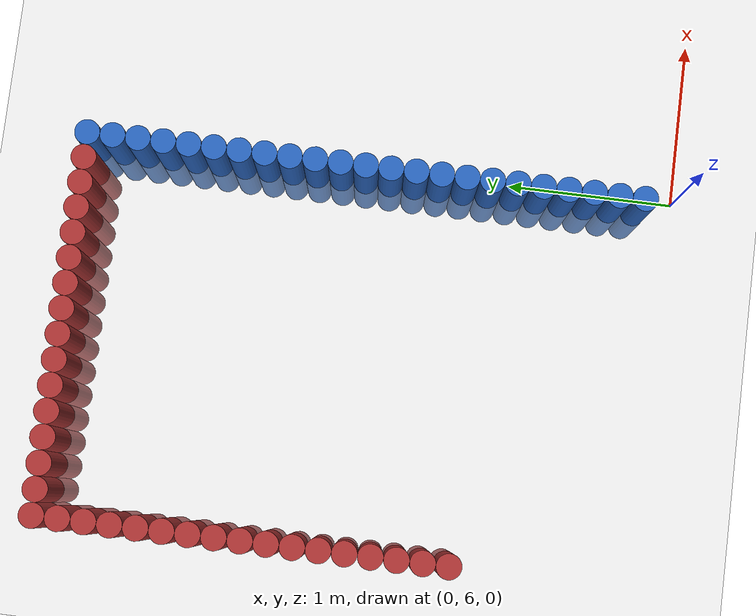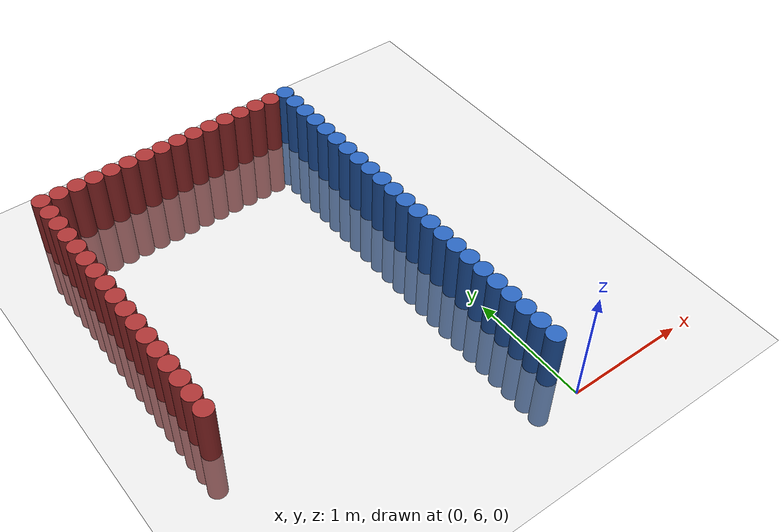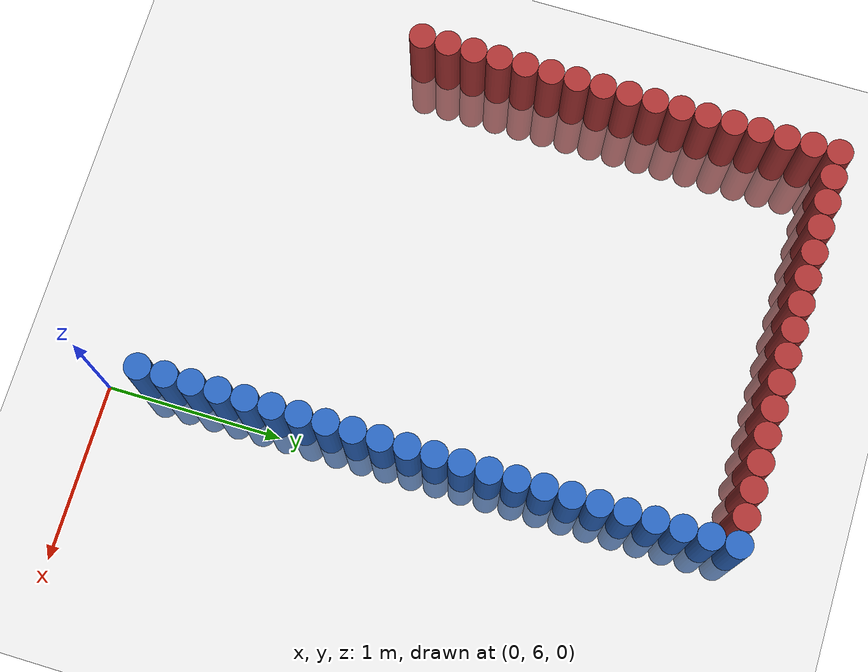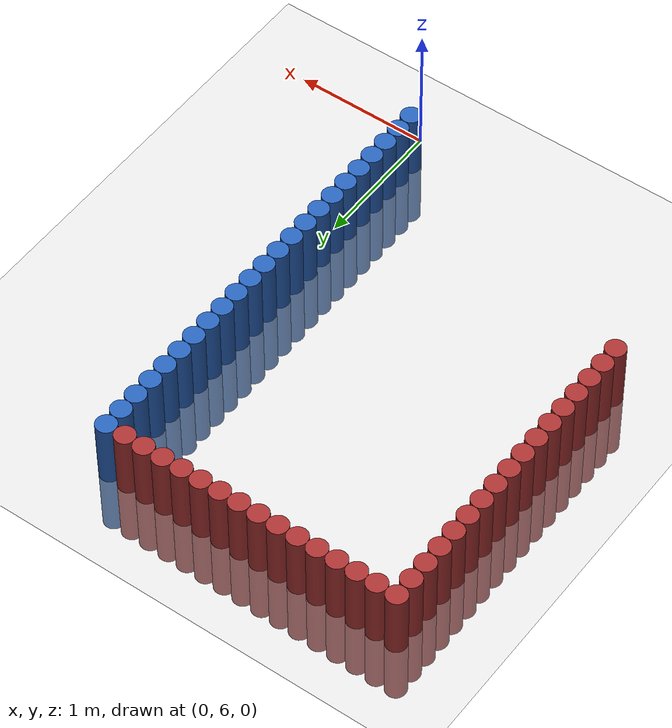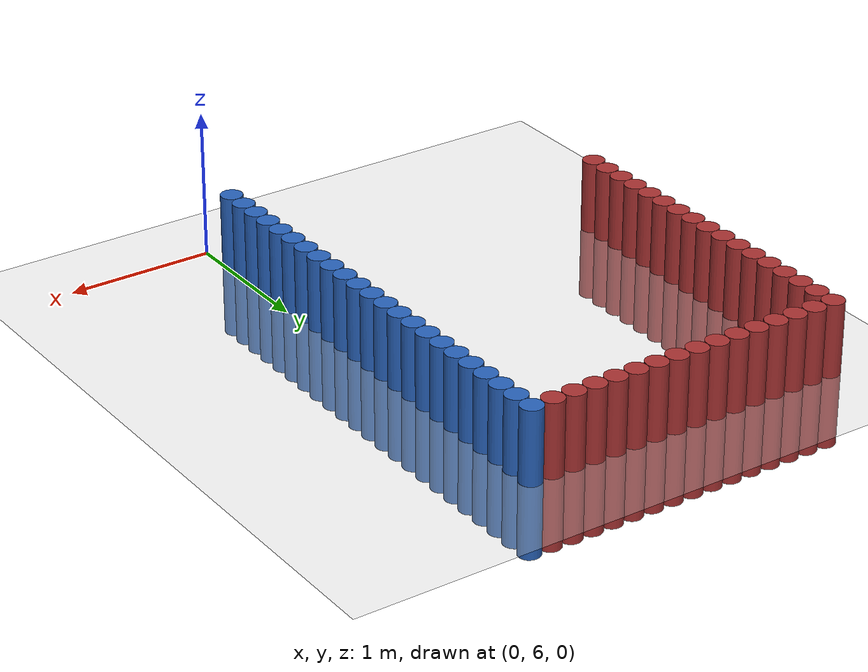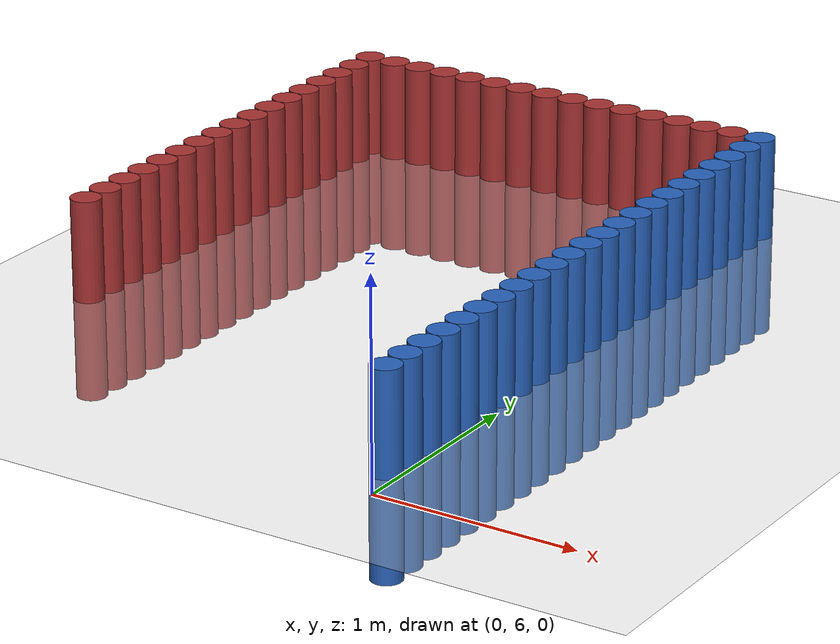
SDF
<sdf version="1.6">
 <world name="default">
  <model name="ground_plane">
   <static>1</static>
   <link name="link">
    <collision name="collision">
     <geometry><plane><normal>0 0 1</normal><size>100 100</size></plane></geometry>
     <surface><friction><ode><mu>100</mu><mu2>50</mu2></ode></friction></surface>
    </collision>
    <visual name="visual">
     <cast_shadows>0</cast_shadows>
     <geometry><plane><normal>0 0 1</normal><size>100 100</size></plane></geometry>
     <material>
      <script><uri>file://media/materials/scripts/gazebo.material</uri><name>Gazebo/Grey</name></script>
     </material>
    </visual>
   </link>
  </model>
  <model name="unit_cylinder_354">
   <static>1</static>
   <pose>-2.325000 7.125000 0.000000 0.000000 0.000000 0.000000</pose>
   <link name="link">
    <inertial>
     <mass>1</mass>
     <inertia><ixx>0.145833</ixx><ixy>0</ixy><ixz>0</ixz><iyy>0.145833</iyy><iyz>0</iyz><izz>0.125</izz></inertia>
    </inertial>
    <collision name="collision">
     <geometry><cylinder><radius>0.075000</radius><length>1</length></cylinder></geometry>
    </collision>
    <visual name="visual">
     <geometry><cylinder><radius>0.075000</radius><length>1</length></cylinder></geometry>
     <material>
      <ambient>0.648000 0.192000 0.192000 1</ambient>
      <diffuse>0.648000 0.192000 0.192000 1</diffuse>
     </material>
     <material>
      <script><name>Gazebo/Grey</name><uri>file://media/materials/scripts/gazebo.material</uri></script>
     </material>
    </visual>
   </link>
  </model>
  <model name="unit_cylinder_355">
   <static>1</static>
   <pose>-2.325000 7.275000 0.000000 0.000000 0.000000 0.000000</pose>
   <link name="link">
    <inertial>
     <mass>1</mass>
     <inertia><ixx>0.145833</ixx><ixy>0</ixy><ixz>0</ixz><iyy>0.145833</iyy><iyz>0</iyz><izz>0.125</izz></inertia>
    </inertial>
    <collision name="collision">
     <geometry><cylinder><radius>0.075000</radius><length>1</length></cylinder></geometry>
    </collision>
    <visual name="visual">
     <geometry><cylinder><radius>0.075000</radius><length>1</length></cylinder></geometry>
     <material>
      <ambient>0.648000 0.192000 0.192000 1</ambient>
      <diffuse>0.648000 0.192000 0.192000 1</diffuse>
     </material>
     <material>
      <script><name>Gazebo/Grey</name><uri>file://media/materials/scripts/gazebo.material</uri></script>
     </material>
    </visual>
   </link>
  </model>
  <model name="unit_cylinder_356">
   <static>1</static>
   <pose>-2.325000 7.425000 0.000000 0.000000 0.000000 0.000000</pose>
   <link name="link">
    <inertial>
     <mass>1</mass>
     <inertia><ixx>0.145833</ixx><ixy>0</ixy><ixz>0</ixz><iyy>0.145833</iyy><iyz>0</iyz><izz>0.125</izz></inertia>
    </inertial>
    <collision name="collision">
     <geometry><cylinder><radius>0.075000</radius><length>1</length></cylinder></geometry>
    </collision>
    <visual name="visual">
     <geometry><cylinder><radius>0.075000</radius><length>1</length></cylinder></geometry>
     <material>
      <ambient>0.648000 0.192000 0.192000 1</ambient>
      <diffuse>0.648000 0.192000 0.192000 1</diffuse>
     </material>
     <material>
      <script><name>Gazebo/Grey</name><uri>file://media/materials/scripts/gazebo.material</uri></script>
     </material>
    </visual>
   </link>
  </model>
  <model name="unit_cylinder_357">
   <static>1</static>
   <pose>-2.325000 7.575000 0.000000 0.000000 0.000000 0.000000</pose>
   <link name="link">
    <inertial>
     <mass>1</mass>
     <inertia><ixx>0.145833</ixx><ixy>0</ixy><ixz>0</ixz><iyy>0.145833</iyy><iyz>0</iyz><izz>0.125</izz></inertia>
    </inertial>
    <collision name="collision">
     <geometry><cylinder><radius>0.075000</radius><length>1</length></cylinder></geometry>
    </collision>
    <visual name="visual">
     <geometry><cylinder><radius>0.075000</radius><length>1</length></cylinder></geometry>
     <material>
      <ambient>0.648000 0.192000 0.192000 1</ambient>
      <diffuse>0.648000 0.192000 0.192000 1</diffuse>
     </material>
     <material>
      <script><name>Gazebo/Grey</name><uri>file://media/materials/scripts/gazebo.material</uri></script>
     </material>
    </visual>
   </link>
  </model>
  <model name="unit_cylinder_358">
   <static>1</static>
   <pose>-2.325000 7.725000 0.000000 0.000000 0.000000 0.000000</pose>
   <link name="link">
    <inertial>
     <mass>1</mass>
     <inertia><ixx>0.145833</ixx><ixy>0</ixy><ixz>0</ixz><iyy>0.145833</iyy><iyz>0</iyz><izz>0.125</izz></inertia>
    </inertial>
    <collision name="collision">
     <geometry><cylinder><radius>0.075000</radius><length>1</length></cylinder></geometry>
    </collision>
    <visual name="visual">
     <geometry><cylinder><radius>0.075000</radius><length>1</length></cylinder></geometry>
     <material>
      <ambient>0.648000 0.192000 0.192000 1</ambient>
      <diffuse>0.648000 0.192000 0.192000 1</diffuse>
     </material>
     <material>
      <script><name>Gazebo/Grey</name><uri>file://media/materials/scripts/gazebo.material</uri></script>
     </material>
    </visual>
   </link>
  </model>
  <model name="unit_cylinder_359">
   <static>1</static>
   <pose>-2.325000 7.875000 0.000000 0.000000 0.000000 0.000000</pose>
   <link name="link">
    <inertial>
     <mass>1</mass>
     <inertia><ixx>0.145833</ixx><ixy>0</ixy><ixz>0</ixz><iyy>0.145833</iyy><iyz>0</iyz><izz>0.125</izz></inertia>
    </inertial>
    <collision name="collision">
     <geometry><cylinder><radius>0.075000</radius><length>1</length></cylinder></geometry>
    </collision>
    <visual name="visual">
     <geometry><cylinder><radius>0.075000</radius><length>1</length></cylinder></geometry>
     <material>
      <ambient>0.648000 0.192000 0.192000 1</ambient>
      <diffuse>0.648000 0.192000 0.192000 1</diffuse>
     </material>
     <material>
      <script><name>Gazebo/Grey</name><uri>file://media/materials/scripts/gazebo.material</uri></script>
     </material>
    </visual>
   </link>
  </model>
  <model name="unit_cylinder_360">
   <static>1</static>
   <pose>-2.325000 8.025000 0.000000 0.000000 0.000000 0.000000</pose>
   <link name="link">
    <inertial>
     <mass>1</mass>
     <inertia><ixx>0.145833</ixx><ixy>0</ixy><ixz>0</ixz><iyy>0.145833</iyy><iyz>0</iyz><izz>0.125</izz></inertia>
    </inertial>
    <collision name="collision">
     <geometry><cylinder><radius>0.075000</radius><length>1</length></cylinder></geometry>
    </collision>
    <visual name="visual">
     <geometry><cylinder><radius>0.075000</radius><length>1</length></cylinder></geometry>
     <material>
      <ambient>0.648000 0.192000 0.192000 1</ambient>
      <diffuse>0.648000 0.192000 0.192000 1</diffuse>
     </material>
     <material>
      <script><name>Gazebo/Grey</name><uri>file://media/materials/scripts/gazebo.material</uri></script>
     </material>
    </visual>
   </link>
  </model>
  <model name="unit_cylinder_361">
   <static>1</static>
   <pose>-2.325000 8.175000 0.000000 0.000000 0.000000 0.000000</pose>
   <link name="link">
    <inertial>
     <mass>1</mass>
     <inertia><ixx>0.145833</ixx><ixy>0</ixy><ixz>0</ixz><iyy>0.145833</iyy><iyz>0</iyz><izz>0.125</izz></inertia>
    </inertial>
    <collision name="collision">
     <geometry><cylinder><radius>0.075000</radius><length>1</length></cylinder></geometry>
    </collision>
    <visual name="visual">
     <geometry><cylinder><radius>0.075000</radius><length>1</length></cylinder></geometry>
     <material>
      <ambient>0.648000 0.192000 0.192000 1</ambient>
      <diffuse>0.648000 0.192000 0.192000 1</diffuse>
     </material>
     <material>
      <script><name>Gazebo/Grey</name><uri>file://media/materials/scripts/gazebo.material</uri></script>
     </material>
    </visual>
   </link>
  </model>
  <model name="unit_cylinder_362">
   <static>1</static>
   <pose>-2.325000 8.325000 0.000000 0.000000 0.000000 0.000000</pose>
   <link name="link">
    <inertial>
     <mass>1</mass>
     <inertia><ixx>0.145833</ixx><ixy>0</ixy><ixz>0</ixz><iyy>0.145833</iyy><iyz>0</iyz><izz>0.125</izz></inertia>
    </inertial>
    <collision name="collision">
     <geometry><cylinder><radius>0.075000</radius><length>1</length></cylinder></geometry>
    </collision>
    <visual name="visual">
     <geometry><cylinder><radius>0.075000</radius><length>1</length></cylinder></geometry>
     <material>
      <ambient>0.648000 0.192000 0.192000 1</ambient>
      <diffuse>0.648000 0.192000 0.192000 1</diffuse>
     </material>
     <material>
      <script><name>Gazebo/Grey</name><uri>file://media/materials/scripts/gazebo.material</uri></script>
     </material>
    </visual>
   </link>
  </model>
  <model name="unit_cylinder_363">
   <static>1</static>
   <pose>-2.325000 8.475000 0.000000 0.000000 0.000000 0.000000</pose>
   <link name="link">
    <inertial>
     <mass>1</mass>
     <inertia><ixx>0.145833</ixx><ixy>0</ixy><ixz>0</ixz><iyy>0.145833</iyy><iyz>0</iyz><izz>0.125</izz></inertia>
    </inertial>
    <collision name="collision">
     <geometry><cylinder><radius>0.075000</radius><length>1</length></cylinder></geometry>
    </collision>
    <visual name="visual">
     <geometry><cylinder><radius>0.075000</radius><length>1</length></cylinder></geometry>
     <material>
      <ambient>0.648000 0.192000 0.192000 1</ambient>
      <diffuse>0.648000 0.192000 0.192000 1</diffuse>
     </material>
     <material>
      <script><name>Gazebo/Grey</name><uri>file://media/materials/scripts/gazebo.material</uri></script>
     </material>
    </visual>
   </link>
  </model>
  <model name="unit_cylinder_364">
   <static>1</static>
   <pose>-2.325000 8.625000 0.000000 0.000000 0.000000 0.000000</pose>
   <link name="link">
    <inertial>
     <mass>1</mass>
     <inertia><ixx>0.145833</ixx><ixy>0</ixy><ixz>0</ixz><iyy>0.145833</iyy><iyz>0</iyz><izz>0.125</izz></inertia>
    </inertial>
    <collision name="collision">
     <geometry><cylinder><radius>0.075000</radius><length>1</length></cylinder></geometry>
    </collision>
    <visual name="visual">
     <geometry><cylinder><radius>0.075000</radius><length>1</length></cylinder></geometry>
     <material>
      <ambient>0.648000 0.192000 0.192000 1</ambient>
      <diffuse>0.648000 0.192000 0.192000 1</diffuse>
     </material>
     <material>
      <script><name>Gazebo/Grey</name><uri>file://media/materials/scripts/gazebo.material</uri></script>
     </material>
    </visual>
   </link>
  </model>
  <model name="unit_cylinder_365">
   <static>1</static>
   <pose>-2.325000 8.775000 0.000000 0.000000 0.000000 0.000000</pose>
   <link name="link">
    <inertial>
     <mass>1</mass>
     <inertia><ixx>0.145833</ixx><ixy>0</ixy><ixz>0</ixz><iyy>0.145833</iyy><iyz>0</iyz><izz>0.125</izz></inertia>
    </inertial>
    <collision name="collision">
     <geometry><cylinder><radius>0.075000</radius><length>1</length></cylinder></geometry>
    </collision>
    <visual name="visual">
     <geometry><cylinder><radius>0.075000</radius><length>1</length></cylinder></geometry>
     <material>
      <ambient>0.648000 0.192000 0.192000 1</ambient>
      <diffuse>0.648000 0.192000 0.192000 1</diffuse>
     </material>
     <material>
      <script><name>Gazebo/Grey</name><uri>file://media/materials/scripts/gazebo.material</uri></script>
     </material>
    </visual>
   </link>
  </model>
  <model name="unit_cylinder_366">
   <static>1</static>
   <pose>-2.325000 8.925000 0.000000 0.000000 0.000000 0.000000</pose>
   <link name="link">
    <inertial>
     <mass>1</mass>
     <inertia><ixx>0.145833</ixx><ixy>0</ixy><ixz>0</ixz><iyy>0.145833</iyy><iyz>0</iyz><izz>0.125</izz></inertia>
    </inertial>
    <collision name="collision">
     <geometry><cylinder><radius>0.075000</radius><length>1</length></cylinder></geometry>
    </collision>
    <visual name="visual">
     <geometry><cylinder><radius>0.075000</radius><length>1</length></cylinder></geometry>
     <material>
      <ambient>0.648000 0.192000 0.192000 1</ambient>
      <diffuse>0.648000 0.192000 0.192000 1</diffuse>
     </material>
     <material>
      <script><name>Gazebo/Grey</name><uri>file://media/materials/scripts/gazebo.material</uri></script>
     </material>
    </visual>
   </link>
  </model>
  <model name="unit_cylinder_367">
   <static>1</static>
   <pose>-2.325000 9.075000 0.000000 0.000000 0.000000 0.000000</pose>
   <link name="link">
    <inertial>
     <mass>1</mass>
     <inertia><ixx>0.145833</ixx><ixy>0</ixy><ixz>0</ixz><iyy>0.145833</iyy><iyz>0</iyz><izz>0.125</izz></inertia>
    </inertial>
    <collision name="collision">
     <geometry><cylinder><radius>0.075000</radius><length>1</length></cylinder></geometry>
    </collision>
    <visual name="visual">
     <geometry><cylinder><radius>0.075000</radius><length>1</length></cylinder></geometry>
     <material>
      <ambient>0.648000 0.192000 0.192000 1</ambient>
      <diffuse>0.648000 0.192000 0.192000 1</diffuse>
     </material>
     <material>
      <script><name>Gazebo/Grey</name><uri>file://media/materials/scripts/gazebo.material</uri></script>
     </material>
    </visual>
   </link>
  </model>
  <model name="unit_cylinder_368">
   <static>1</static>
   <pose>-2.325000 9.225000 0.000000 0.000000 0.000000 0.000000</pose>
   <link name="link">
    <inertial>
     <mass>1</mass>
     <inertia><ixx>0.145833</ixx><ixy>0</ixy><ixz>0</ixz><iyy>0.145833</iyy><iyz>0</iyz><izz>0.125</izz></inertia>
    </inertial>
    <collision name="collision">
     <geometry><cylinder><radius>0.075000</radius><length>1</length></cylinder></geometry>
    </collision>
    <visual name="visual">
     <geometry><cylinder><radius>0.075000</radius><length>1</length></cylinder></geometry>
     <material>
      <ambient>0.648000 0.192000 0.192000 1</ambient>
      <diffuse>0.648000 0.192000 0.192000 1</diffuse>
     </material>
     <material>
      <script><name>Gazebo/Grey</name><uri>file://media/materials/scripts/gazebo.material</uri></script>
     </material>
    </visual>
   </link>
  </model>
  <model name="unit_cylinder_369">
   <static>1</static>
   <pose>-2.325000 9.375000 0.000000 0.000000 0.000000 0.000000</pose>
   <link name="link">
    <inertial>
     <mass>1</mass>
     <inertia><ixx>0.145833</ixx><ixy>0</ixy><ixz>0</ixz><iyy>0.145833</iyy><iyz>0</iyz><izz>0.125</izz></inertia>
    </inertial>
    <collision name="collision">
     <geometry><cylinder><radius>0.075000</radius><length>1</length></cylinder></geometry>
    </collision>
    <visual name="visual">
     <geometry><cylinder><radius>0.075000</radius><length>1</length></cylinder></geometry>
     <material>
      <ambient>0.648000 0.192000 0.192000 1</ambient>
      <diffuse>0.648000 0.192000 0.192000 1</diffuse>
     </material>
     <material>
      <script><name>Gazebo/Grey</name><uri>file://media/materials/scripts/gazebo.material</uri></script>
     </material>
    </visual>
   </link>
  </model>
  <model name="unit_cylinder_370">
   <static>1</static>
   <pose>-2.325000 9.525000 0.000000 0.000000 0.000000 0.000000</pose>
   <link name="link">
    <inertial>
     <mass>1</mass>
     <inertia><ixx>0.145833</ixx><ixy>0</ixy><ixz>0</ixz><iyy>0.145833</iyy><iyz>0</iyz><izz>0.125</izz></inertia>
    </inertial>
    <collision name="collision">
     <geometry><cylinder><radius>0.075000</radius><length>1</length></cylinder></geometry>
    </collision>
    <visual name="visual">
     <geometry><cylinder><radius>0.075000</radius><length>1</length></cylinder></geometry>
     <material>
      <ambient>0.648000 0.192000 0.192000 1</ambient>
      <diffuse>0.648000 0.192000 0.192000 1</diffuse>
     </material>
     <material>
      <script><name>Gazebo/Grey</name><uri>file://media/materials/scripts/gazebo.material</uri></script>
     </material>
    </visual>
   </link>
  </model>
  <model name="unit_cylinder_372">
   <static>1</static>
   <pose>-2.175000 9.525000 0.000000 0.000000 0.000000 0.000000</pose>
   <link name="link">
    <inertial>
     <mass>1</mass>
     <inertia><ixx>0.145833</ixx><ixy>0</ixy><ixz>0</ixz><iyy>0.145833</iyy><iyz>0</iyz><izz>0.125</izz></inertia>
    </inertial>
    <collision name="collision">
     <geometry><cylinder><radius>0.075000</radius><length>1</length></cylinder></geometry>
    </collision>
    <visual name="visual">
     <geometry><cylinder><radius>0.075000</radius><length>1</length></cylinder></geometry>
     <material>
      <ambient>0.648000 0.192000 0.192000 1</ambient>
      <diffuse>0.648000 0.192000 0.192000 1</diffuse>
     </material>
     <material>
      <script><name>Gazebo/Grey</name><uri>file://media/materials/scripts/gazebo.material</uri></script>
     </material>
    </visual>
   </link>
  </model>
  <model name="unit_cylinder_374">
   <static>1</static>
   <pose>-2.025000 9.525000 0.000000 0.000000 0.000000 0.000000</pose>
   <link name="link">
    <inertial>
     <mass>1</mass>
     <inertia><ixx>0.145833</ixx><ixy>0</ixy><ixz>0</ixz><iyy>0.145833</iyy><iyz>0</iyz><izz>0.125</izz></inertia>
    </inertial>
    <collision name="collision">
     <geometry><cylinder><radius>0.075000</radius><length>1</length></cylinder></geometry>
    </collision>
    <visual name="visual">
     <geometry><cylinder><radius>0.075000</radius><length>1</length></cylinder></geometry>
     <material>
      <ambient>0.648000 0.192000 0.192000 1</ambient>
      <diffuse>0.648000 0.192000 0.192000 1</diffuse>
     </material>
     <material>
      <script><name>Gazebo/Grey</name><uri>file://media/materials/scripts/gazebo.material</uri></script>
     </material>
    </visual>
   </link>
  </model>
  <model name="unit_cylinder_376">
   <static>1</static>
   <pose>-1.875000 9.525000 0.000000 0.000000 0.000000 0.000000</pose>
   <link name="link">
    <inertial>
     <mass>1</mass>
     <inertia><ixx>0.145833</ixx><ixy>0</ixy><ixz>0</ixz><iyy>0.145833</iyy><iyz>0</iyz><izz>0.125</izz></inertia>
    </inertial>
    <collision name="collision">
     <geometry><cylinder><radius>0.075000</radius><length>1</length></cylinder></geometry>
    </collision>
    <visual name="visual">
     <geometry><cylinder><radius>0.075000</radius><length>1</length></cylinder></geometry>
     <material>
      <ambient>0.648000 0.192000 0.192000 1</ambient>
      <diffuse>0.648000 0.192000 0.192000 1</diffuse>
     </material>
     <material>
      <script><name>Gazebo/Grey</name><uri>file://media/materials/scripts/gazebo.material</uri></script>
     </material>
    </visual>
   </link>
  </model>
  <model name="unit_cylinder_378">
   <static>1</static>
   <pose>-1.725000 9.525000 0.000000 0.000000 0.000000 0.000000</pose>
   <link name="link">
    <inertial>
     <mass>1</mass>
     <inertia><ixx>0.145833</ixx><ixy>0</ixy><ixz>0</ixz><iyy>0.145833</iyy><iyz>0</iyz><izz>0.125</izz></inertia>
    </inertial>
    <collision name="collision">
     <geometry><cylinder><radius>0.075000</radius><length>1</length></cylinder></geometry>
    </collision>
    <visual name="visual">
     <geometry><cylinder><radius>0.075000</radius><length>1</length></cylinder></geometry>
     <material>
      <ambient>0.648000 0.192000 0.192000 1</ambient>
      <diffuse>0.648000 0.192000 0.192000 1</diffuse>
     </material>
     <material>
      <script><name>Gazebo/Grey</name><uri>file://media/materials/scripts/gazebo.material</uri></script>
     </material>
    </visual>
   </link>
  </model>
  <model name="unit_cylinder_380">
   <static>1</static>
   <pose>-1.575000 9.525000 0.000000 0.000000 0.000000 0.000000</pose>
   <link name="link">
    <inertial>
     <mass>1</mass>
     <inertia><ixx>0.145833</ixx><ixy>0</ixy><ixz>0</ixz><iyy>0.145833</iyy><iyz>0</iyz><izz>0.125</izz></inertia>
    </inertial>
    <collision name="collision">
     <geometry><cylinder><radius>0.075000</radius><length>1</length></cylinder></geometry>
    </collision>
    <visual name="visual">
     <geometry><cylinder><radius>0.075000</radius><length>1</length></cylinder></geometry>
     <material>
      <ambient>0.648000 0.192000 0.192000 1</ambient>
      <diffuse>0.648000 0.192000 0.192000 1</diffuse>
     </material>
     <material>
      <script><name>Gazebo/Grey</name><uri>file://media/materials/scripts/gazebo.material</uri></script>
     </material>
    </visual>
   </link>
  </model>
  <model name="unit_cylinder_382">
   <static>1</static>
   <pose>-1.425000 9.525000 0.000000 0.000000 0.000000 0.000000</pose>
   <link name="link">
    <inertial>
     <mass>1</mass>
     <inertia><ixx>0.145833</ixx><ixy>0</ixy><ixz>0</ixz><iyy>0.145833</iyy><iyz>0</iyz><izz>0.125</izz></inertia>
    </inertial>
    <collision name="collision">
     <geometry><cylinder><radius>0.075000</radius><length>1</length></cylinder></geometry>
    </collision>
    <visual name="visual">
     <geometry><cylinder><radius>0.075000</radius><length>1</length></cylinder></geometry>
     <material>
      <ambient>0.648000 0.192000 0.192000 1</ambient>
      <diffuse>0.648000 0.192000 0.192000 1</diffuse>
     </material>
     <material>
      <script><name>Gazebo/Grey</name><uri>file://media/materials/scripts/gazebo.material</uri></script>
     </material>
    </visual>
   </link>
  </model>
  <model name="unit_cylinder_384">
   <static>1</static>
   <pose>-1.275000 9.525000 0.000000 0.000000 0.000000 0.000000</pose>
   <link name="link">
    <inertial>
     <mass>1</mass>
     <inertia><ixx>0.145833</ixx><ixy>0</ixy><ixz>0</ixz><iyy>0.145833</iyy><iyz>0</iyz><izz>0.125</izz></inertia>
    </inertial>
    <collision name="collision">
     <geometry><cylinder><radius>0.075000</radius><length>1</length></cylinder></geometry>
    </collision>
    <visual name="visual">
     <geometry><cylinder><radius>0.075000</radius><length>1</length></cylinder></geometry>
     <material>
      <ambient>0.648000 0.192000 0.192000 1</ambient>
      <diffuse>0.648000 0.192000 0.192000 1</diffuse>
     </material>
     <material>
      <script><name>Gazebo/Grey</name><uri>file://media/materials/scripts/gazebo.material</uri></script>
     </material>
    </visual>
   </link>
  </model>
  <model name="unit_cylinder_386">
   <static>1</static>
   <pose>-1.125000 9.525000 0.000000 0.000000 0.000000 0.000000</pose>
   <link name="link">
    <inertial>
     <mass>1</mass>
     <inertia><ixx>0.145833</ixx><ixy>0</ixy><ixz>0</ixz><iyy>0.145833</iyy><iyz>0</iyz><izz>0.125</izz></inertia>
    </inertial>
    <collision name="collision">
     <geometry><cylinder><radius>0.075000</radius><length>1</length></cylinder></geometry>
    </collision>
    <visual name="visual">
     <geometry><cylinder><radius>0.075000</radius><length>1</length></cylinder></geometry>
     <material>
      <ambient>0.648000 0.192000 0.192000 1</ambient>
      <diffuse>0.648000 0.192000 0.192000 1</diffuse>
     </material>
     <material>
      <script><name>Gazebo/Grey</name><uri>file://media/materials/scripts/gazebo.material</uri></script>
     </material>
    </visual>
   </link>
  </model>
  <model name="unit_cylinder_388">
   <static>1</static>
   <pose>-0.975000 9.525000 0.000000 0.000000 0.000000 0.000000</pose>
   <link name="link">
    <inertial>
     <mass>1</mass>
     <inertia><ixx>0.145833</ixx><ixy>0</ixy><ixz>0</ixz><iyy>0.145833</iyy><iyz>0</iyz><izz>0.125</izz></inertia>
    </inertial>
    <collision name="collision">
     <geometry><cylinder><radius>0.075000</radius><length>1</length></cylinder></geometry>
    </collision>
    <visual name="visual">
     <geometry><cylinder><radius>0.075000</radius><length>1</length></cylinder></geometry>
     <material>
      <ambient>0.648000 0.192000 0.192000 1</ambient>
      <diffuse>0.648000 0.192000 0.192000 1</diffuse>
     </material>
     <material>
      <script><name>Gazebo/Grey</name><uri>file://media/materials/scripts/gazebo.material</uri></script>
     </material>
    </visual>
   </link>
  </model>
  <model name="unit_cylinder_390">
   <static>1</static>
   <pose>-0.825000 9.525000 0.000000 0.000000 0.000000 0.000000</pose>
   <link name="link">
    <inertial>
     <mass>1</mass>
     <inertia><ixx>0.145833</ixx><ixy>0</ixy><ixz>0</ixz><iyy>0.145833</iyy><iyz>0</iyz><izz>0.125</izz></inertia>
    </inertial>
    <collision name="collision">
     <geometry><cylinder><radius>0.075000</radius><length>1</length></cylinder></geometry>
    </collision>
    <visual name="visual">
     <geometry><cylinder><radius>0.075000</radius><length>1</length></cylinder></geometry>
     <material>
      <ambient>0.648000 0.192000 0.192000 1</ambient>
      <diffuse>0.648000 0.192000 0.192000 1</diffuse>
     </material>
     <material>
      <script><name>Gazebo/Grey</name><uri>file://media/materials/scripts/gazebo.material</uri></script>
     </material>
    </visual>
   </link>
  </model>
  <model name="unit_cylinder_392">
   <static>1</static>
   <pose>-0.675000 9.525000 0.000000 0.000000 0.000000 0.000000</pose>
   <link name="link">
    <inertial>
     <mass>1</mass>
     <inertia><ixx>0.145833</ixx><ixy>0</ixy><ixz>0</ixz><iyy>0.145833</iyy><iyz>0</iyz><izz>0.125</izz></inertia>
    </inertial>
    <collision name="collision">
     <geometry><cylinder><radius>0.075000</radius><length>1</length></cylinder></geometry>
    </collision>
    <visual name="visual">
     <geometry><cylinder><radius>0.075000</radius><length>1</length></cylinder></geometry>
     <material>
      <ambient>0.648000 0.192000 0.192000 1</ambient>
      <diffuse>0.648000 0.192000 0.192000 1</diffuse>
     </material>
     <material>
      <script><name>Gazebo/Grey</name><uri>file://media/materials/scripts/gazebo.material</uri></script>
     </material>
    </visual>
   </link>
  </model>
  <model name="unit_cylinder_394">
   <static>1</static>
   <pose>-0.525000 9.525000 0.000000 0.000000 0.000000 0.000000</pose>
   <link name="link">
    <inertial>
     <mass>1</mass>
     <inertia><ixx>0.145833</ixx><ixy>0</ixy><ixz>0</ixz><iyy>0.145833</iyy><iyz>0</iyz><izz>0.125</izz></inertia>
    </inertial>
    <collision name="collision">
     <geometry><cylinder><radius>0.075000</radius><length>1</length></cylinder></geometry>
    </collision>
    <visual name="visual">
     <geometry><cylinder><radius>0.075000</radius><length>1</length></cylinder></geometry>
     <material>
      <ambient>0.648000 0.192000 0.192000 1</ambient>
      <diffuse>0.648000 0.192000 0.192000 1</diffuse>
     </material>
     <material>
      <script><name>Gazebo/Grey</name><uri>file://media/materials/scripts/gazebo.material</uri></script>
     </material>
    </visual>
   </link>
  </model>
  <model name="unit_cylinder_396">
   <static>1</static>
   <pose>-0.375000 9.525000 0.000000 0.000000 0.000000 0.000000</pose>
   <link name="link">
    <inertial>
     <mass>1</mass>
     <inertia><ixx>0.145833</ixx><ixy>0</ixy><ixz>0</ixz><iyy>0.145833</iyy><iyz>0</iyz><izz>0.125</izz></inertia>
    </inertial>
    <collision name="collision">
     <geometry><cylinder><radius>0.075000</radius><length>1</length></cylinder></geometry>
    </collision>
    <visual name="visual">
     <geometry><cylinder><radius>0.075000</radius><length>1</length></cylinder></geometry>
     <material>
      <ambient>0.648000 0.192000 0.192000 1</ambient>
      <diffuse>0.648000 0.192000 0.192000 1</diffuse>
     </material>
     <material>
      <script><name>Gazebo/Grey</name><uri>file://media/materials/scripts/gazebo.material</uri></script>
     </material>
    </visual>
   </link>
  </model>
  <model name="unit_cylinder_398">
   <static>1</static>
   <pose>-0.225000 9.525000 0.000000 0.000000 0.000000 0.000000</pose>
   <link name="link">
    <inertial>
     <mass>1</mass>
     <inertia><ixx>0.145833</ixx><ixy>0</ixy><ixz>0</ixz><iyy>0.145833</iyy><iyz>0</iyz><izz>0.125</izz></inertia>
    </inertial>
    <collision name="collision">
     <geometry><cylinder><radius>0.075000</radius><length>1</length></cylinder></geometry>
    </collision>
    <visual name="visual">
     <geometry><cylinder><radius>0.075000</radius><length>1</length></cylinder></geometry>
     <material>
      <ambient>0.648000 0.192000 0.192000 1</ambient>
      <diffuse>0.648000 0.192000 0.192000 1</diffuse>
     </material>
     <material>
      <script><name>Gazebo/Grey</name><uri>file://media/materials/scripts/gazebo.material</uri></script>
     </material>
    </visual>
   </link>
  </model>
  <model name="unit_cylinder_406">
   <static>1</static>
   <pose>-0.075000 6.225000 0.000000 0.000000 0.000000 0.000000</pose>
   <link name="link">
    <inertial>
     <mass>1</mass>
     <inertia><ixx>0.145833</ixx><ixy>0</ixy><ixz>0</ixz><iyy>0.145833</iyy><iyz>0</iyz><izz>0.125</izz></inertia>
    </inertial>
    <collision name="collision">
     <geometry><cylinder><radius>0.075000</radius><length>1</length></cylinder></geometry>
    </collision>
    <visual name="visual">
     <geometry><cylinder><radius>0.075000</radius><length>1</length></cylinder></geometry>
     <material>
      <ambient>0.152000 0.379000 0.720000 1</ambient>
      <diffuse>0.152000 0.379000 0.720000 1</diffuse>
     </material>
     <material>
      <script><name>Gazebo/Grey</name><uri>file://media/materials/scripts/gazebo.material</uri></script>
     </material>
    </visual>
   </link>
  </model>
  <model name="unit_cylinder_407">
   <static>1</static>
   <pose>-0.075000 6.375000 0.000000 0.000000 0.000000 0.000000</pose>
   <link name="link">
    <inertial>
     <mass>1</mass>
     <inertia><ixx>0.145833</ixx><ixy>0</ixy><ixz>0</ixz><iyy>0.145833</iyy><iyz>0</iyz><izz>0.125</izz></inertia>
    </inertial>
    <collision name="collision">
     <geometry><cylinder><radius>0.075000</radius><length>1</length></cylinder></geometry>
    </collision>
    <visual name="visual">
     <geometry><cylinder><radius>0.075000</radius><length>1</length></cylinder></geometry>
     <material>
      <ambient>0.152000 0.379000 0.720000 1</ambient>
      <diffuse>0.152000 0.379000 0.720000 1</diffuse>
     </material>
     <material>
      <script><name>Gazebo/Grey</name><uri>file://media/materials/scripts/gazebo.material</uri></script>
     </material>
    </visual>
   </link>
  </model>
  <model name="unit_cylinder_408">
   <static>1</static>
   <pose>-0.075000 6.525000 0.000000 0.000000 0.000000 0.000000</pose>
   <link name="link">
    <inertial>
     <mass>1</mass>
     <inertia><ixx>0.145833</ixx><ixy>0</ixy><ixz>0</ixz><iyy>0.145833</iyy><iyz>0</iyz><izz>0.125</izz></inertia>
    </inertial>
    <collision name="collision">
     <geometry><cylinder><radius>0.075000</radius><length>1</length></cylinder></geometry>
    </collision>
    <visual name="visual">
     <geometry><cylinder><radius>0.075000</radius><length>1</length></cylinder></geometry>
     <material>
      <ambient>0.152000 0.379000 0.720000 1</ambient>
      <diffuse>0.152000 0.379000 0.720000 1</diffuse>
     </material>
     <material>
      <script><name>Gazebo/Grey</name><uri>file://media/materials/scripts/gazebo.material</uri></script>
     </material>
    </visual>
   </link>
  </model>
  <model name="unit_cylinder_409">
   <static>1</static>
   <pose>-0.075000 6.675000 0.000000 0.000000 0.000000 0.000000</pose>
   <link name="link">
    <inertial>
     <mass>1</mass>
     <inertia><ixx>0.145833</ixx><ixy>0</ixy><ixz>0</ixz><iyy>0.145833</iyy><iyz>0</iyz><izz>0.125</izz></inertia>
    </inertial>
    <collision name="collision">
     <geometry><cylinder><radius>0.075000</radius><length>1</length></cylinder></geometry>
    </collision>
    <visual name="visual">
     <geometry><cylinder><radius>0.075000</radius><length>1</length></cylinder></geometry>
     <material>
      <ambient>0.152000 0.379000 0.720000 1</ambient>
      <diffuse>0.152000 0.379000 0.720000 1</diffuse>
     </material>
     <material>
      <script><name>Gazebo/Grey</name><uri>file://media/materials/scripts/gazebo.material</uri></script>
     </material>
    </visual>
   </link>
  </model>
  <model name="unit_cylinder_410">
   <static>1</static>
   <pose>-0.075000 6.825000 0.000000 0.000000 0.000000 0.000000</pose>
   <link name="link">
    <inertial>
     <mass>1</mass>
     <inertia><ixx>0.145833</ixx><ixy>0</ixy><ixz>0</ixz><iyy>0.145833</iyy><iyz>0</iyz><izz>0.125</izz></inertia>
    </inertial>
    <collision name="collision">
     <geometry><cylinder><radius>0.075000</radius><length>1</length></cylinder></geometry>
    </collision>
    <visual name="visual">
     <geometry><cylinder><radius>0.075000</radius><length>1</length></cylinder></geometry>
     <material>
      <ambient>0.152000 0.379000 0.720000 1</ambient>
      <diffuse>0.152000 0.379000 0.720000 1</diffuse>
     </material>
     <material>
      <script><name>Gazebo/Grey</name><uri>file://media/materials/scripts/gazebo.material</uri></script>
     </material>
    </visual>
   </link>
  </model>
  <model name="unit_cylinder_411">
   <static>1</static>
   <pose>-0.075000 6.975000 0.000000 0.000000 0.000000 0.000000</pose>
   <link name="link">
    <inertial>
     <mass>1</mass>
     <inertia><ixx>0.145833</ixx><ixy>0</ixy><ixz>0</ixz><iyy>0.145833</iyy><iyz>0</iyz><izz>0.125</izz></inertia>
    </inertial>
    <collision name="collision">
     <geometry><cylinder><radius>0.075000</radius><length>1</length></cylinder></geometry>
    </collision>
    <visual name="visual">
     <geometry><cylinder><radius>0.075000</radius><length>1</length></cylinder></geometry>
     <material>
      <ambient>0.152000 0.379000 0.720000 1</ambient>
      <diffuse>0.152000 0.379000 0.720000 1</diffuse>
     </material>
     <material>
      <script><name>Gazebo/Grey</name><uri>file://media/materials/scripts/gazebo.material</uri></script>
     </material>
    </visual>
   </link>
  </model>
  <model name="unit_cylinder_412">
   <static>1</static>
   <pose>-0.075000 7.125000 0.000000 0.000000 0.000000 0.000000</pose>
   <link name="link">
    <inertial>
     <mass>1</mass>
     <inertia><ixx>0.145833</ixx><ixy>0</ixy><ixz>0</ixz><iyy>0.145833</iyy><iyz>0</iyz><izz>0.125</izz></inertia>
    </inertial>
    <collision name="collision">
     <geometry><cylinder><radius>0.075000</radius><length>1</length></cylinder></geometry>
    </collision>
    <visual name="visual">
     <geometry><cylinder><radius>0.075000</radius><length>1</length></cylinder></geometry>
     <material>
      <ambient>0.152000 0.379000 0.720000 1</ambient>
      <diffuse>0.152000 0.379000 0.720000 1</diffuse>
     </material>
     <material>
      <script><name>Gazebo/Grey</name><uri>file://media/materials/scripts/gazebo.material</uri></script>
     </material>
    </visual>
   </link>
  </model>
  <model name="unit_cylinder_413">
   <static>1</static>
   <pose>-0.075000 7.275000 0.000000 0.000000 0.000000 0.000000</pose>
   <link name="link">
    <inertial>
     <mass>1</mass>
     <inertia><ixx>0.145833</ixx><ixy>0</ixy><ixz>0</ixz><iyy>0.145833</iyy><iyz>0</iyz><izz>0.125</izz></inertia>
    </inertial>
    <collision name="collision">
     <geometry><cylinder><radius>0.075000</radius><length>1</length></cylinder></geometry>
    </collision>
    <visual name="visual">
     <geometry><cylinder><radius>0.075000</radius><length>1</length></cylinder></geometry>
     <material>
      <ambient>0.152000 0.379000 0.720000 1</ambient>
      <diffuse>0.152000 0.379000 0.720000 1</diffuse>
     </material>
     <material>
      <script><name>Gazebo/Grey</name><uri>file://media/materials/scripts/gazebo.material</uri></script>
     </material>
    </visual>
   </link>
  </model>
  <model name="unit_cylinder_414">
   <static>1</static>
   <pose>-0.075000 7.425000 0.000000 0.000000 0.000000 0.000000</pose>
   <link name="link">
    <inertial>
     <mass>1</mass>
     <inertia><ixx>0.145833</ixx><ixy>0</ixy><ixz>0</ixz><iyy>0.145833</iyy><iyz>0</iyz><izz>0.125</izz></inertia>
    </inertial>
    <collision name="collision">
     <geometry><cylinder><radius>0.075000</radius><length>1</length></cylinder></geometry>
    </collision>
    <visual name="visual">
     <geometry><cylinder><radius>0.075000</radius><length>1</length></cylinder></geometry>
     <material>
      <ambient>0.152000 0.379000 0.720000 1</ambient>
      <diffuse>0.152000 0.379000 0.720000 1</diffuse>
     </material>
     <material>
      <script><name>Gazebo/Grey</name><uri>file://media/materials/scripts/gazebo.material</uri></script>
     </material>
    </visual>
   </link>
  </model>
  <model name="unit_cylinder_415">
   <static>1</static>
   <pose>-0.075000 7.575000 0.000000 0.000000 0.000000 0.000000</pose>
   <link name="link">
    <inertial>
     <mass>1</mass>
     <inertia><ixx>0.145833</ixx><ixy>0</ixy><ixz>0</ixz><iyy>0.145833</iyy><iyz>0</iyz><izz>0.125</izz></inertia>
    </inertial>
    <collision name="collision">
     <geometry><cylinder><radius>0.075000</radius><length>1</length></cylinder></geometry>
    </collision>
    <visual name="visual">
     <geometry><cylinder><radius>0.075000</radius><length>1</length></cylinder></geometry>
     <material>
      <ambient>0.152000 0.379000 0.720000 1</ambient>
      <diffuse>0.152000 0.379000 0.720000 1</diffuse>
     </material>
     <material>
      <script><name>Gazebo/Grey</name><uri>file://media/materials/scripts/gazebo.material</uri></script>
     </material>
    </visual>
   </link>
  </model>
  <model name="unit_cylinder_416">
   <static>1</static>
   <pose>-0.075000 7.725000 0.000000 0.000000 0.000000 0.000000</pose>
   <link name="link">
    <inertial>
     <mass>1</mass>
     <inertia><ixx>0.145833</ixx><ixy>0</ixy><ixz>0</ixz><iyy>0.145833</iyy><iyz>0</iyz><izz>0.125</izz></inertia>
    </inertial>
    <collision name="collision">
     <geometry><cylinder><radius>0.075000</radius><length>1</length></cylinder></geometry>
    </collision>
    <visual name="visual">
     <geometry><cylinder><radius>0.075000</radius><length>1</length></cylinder></geometry>
     <material>
      <ambient>0.152000 0.379000 0.720000 1</ambient>
      <diffuse>0.152000 0.379000 0.720000 1</diffuse>
     </material>
     <material>
      <script><name>Gazebo/Grey</name><uri>file://media/materials/scripts/gazebo.material</uri></script>
     </material>
    </visual>
   </link>
  </model>
  <model name="unit_cylinder_417">
   <static>1</static>
   <pose>-0.075000 7.875000 0.000000 0.000000 0.000000 0.000000</pose>
   <link name="link">
    <inertial>
     <mass>1</mass>
     <inertia><ixx>0.145833</ixx><ixy>0</ixy><ixz>0</ixz><iyy>0.145833</iyy><iyz>0</iyz><izz>0.125</izz></inertia>
    </inertial>
    <collision name="collision">
     <geometry><cylinder><radius>0.075000</radius><length>1</length></cylinder></geometry>
    </collision>
    <visual name="visual">
     <geometry><cylinder><radius>0.075000</radius><length>1</length></cylinder></geometry>
     <material>
      <ambient>0.152000 0.379000 0.720000 1</ambient>
      <diffuse>0.152000 0.379000 0.720000 1</diffuse>
     </material>
     <material>
      <script><name>Gazebo/Grey</name><uri>file://media/materials/scripts/gazebo.material</uri></script>
     </material>
    </visual>
   </link>
  </model>
  <model name="unit_cylinder_418">
   <static>1</static>
   <pose>-0.075000 8.025000 0.000000 0.000000 0.000000 0.000000</pose>
   <link name="link">
    <inertial>
     <mass>1</mass>
     <inertia><ixx>0.145833</ixx><ixy>0</ixy><ixz>0</ixz><iyy>0.145833</iyy><iyz>0</iyz><izz>0.125</izz></inertia>
    </inertial>
    <collision name="collision">
     <geometry><cylinder><radius>0.075000</radius><length>1</length></cylinder></geometry>
    </collision>
    <visual name="visual">
     <geometry><cylinder><radius>0.075000</radius><length>1</length></cylinder></geometry>
     <material>
      <ambient>0.152000 0.379000 0.720000 1</ambient>
      <diffuse>0.152000 0.379000 0.720000 1</diffuse>
     </material>
     <material>
      <script><name>Gazebo/Grey</name><uri>file://media/materials/scripts/gazebo.material</uri></script>
     </material>
    </visual>
   </link>
  </model>
  <model name="unit_cylinder_419">
   <static>1</static>
   <pose>-0.075000 8.175000 0.000000 0.000000 0.000000 0.000000</pose>
   <link name="link">
    <inertial>
     <mass>1</mass>
     <inertia><ixx>0.145833</ixx><ixy>0</ixy><ixz>0</ixz><iyy>0.145833</iyy><iyz>0</iyz><izz>0.125</izz></inertia>
    </inertial>
    <collision name="collision">
     <geometry><cylinder><radius>0.075000</radius><length>1</length></cylinder></geometry>
    </collision>
    <visual name="visual">
     <geometry><cylinder><radius>0.075000</radius><length>1</length></cylinder></geometry>
     <material>
      <ambient>0.152000 0.379000 0.720000 1</ambient>
      <diffuse>0.152000 0.379000 0.720000 1</diffuse>
     </material>
     <material>
      <script><name>Gazebo/Grey</name><uri>file://media/materials/scripts/gazebo.material</uri></script>
     </material>
    </visual>
   </link>
  </model>
  <model name="unit_cylinder_420">
   <static>1</static>
   <pose>-0.075000 8.325000 0.000000 0.000000 0.000000 0.000000</pose>
   <link name="link">
    <inertial>
     <mass>1</mass>
     <inertia><ixx>0.145833</ixx><ixy>0</ixy><ixz>0</ixz><iyy>0.145833</iyy><iyz>0</iyz><izz>0.125</izz></inertia>
    </inertial>
    <collision name="collision">
     <geometry><cylinder><radius>0.075000</radius><length>1</length></cylinder></geometry>
    </collision>
    <visual name="visual">
     <geometry><cylinder><radius>0.075000</radius><length>1</length></cylinder></geometry>
     <material>
      <ambient>0.152000 0.379000 0.720000 1</ambient>
      <diffuse>0.152000 0.379000 0.720000 1</diffuse>
     </material>
     <material>
      <script><name>Gazebo/Grey</name><uri>file://media/materials/scripts/gazebo.material</uri></script>
     </material>
    </visual>
   </link>
  </model>
  <model name="unit_cylinder_421">
   <static>1</static>
   <pose>-0.075000 8.475000 0.000000 0.000000 0.000000 0.000000</pose>
   <link name="link">
    <inertial>
     <mass>1</mass>
     <inertia><ixx>0.145833</ixx><ixy>0</ixy><ixz>0</ixz><iyy>0.145833</iyy><iyz>0</iyz><izz>0.125</izz></inertia>
    </inertial>
    <collision name="collision">
     <geometry><cylinder><radius>0.075000</radius><length>1</length></cylinder></geometry>
    </collision>
    <visual name="visual">
     <geometry><cylinder><radius>0.075000</radius><length>1</length></cylinder></geometry>
     <material>
      <ambient>0.152000 0.379000 0.720000 1</ambient>
      <diffuse>0.152000 0.379000 0.720000 1</diffuse>
     </material>
     <material>
      <script><name>Gazebo/Grey</name><uri>file://media/materials/scripts/gazebo.material</uri></script>
     </material>
    </visual>
   </link>
  </model>
  <model name="unit_cylinder_422">
   <static>1</static>
   <pose>-0.075000 8.625000 0.000000 0.000000 0.000000 0.000000</pose>
   <link name="link">
    <inertial>
     <mass>1</mass>
     <inertia><ixx>0.145833</ixx><ixy>0</ixy><ixz>0</ixz><iyy>0.145833</iyy><iyz>0</iyz><izz>0.125</izz></inertia>
    </inertial>
    <collision name="collision">
     <geometry><cylinder><radius>0.075000</radius><length>1</length></cylinder></geometry>
    </collision>
    <visual name="visual">
     <geometry><cylinder><radius>0.075000</radius><length>1</length></cylinder></geometry>
     <material>
      <ambient>0.152000 0.379000 0.720000 1</ambient>
      <diffuse>0.152000 0.379000 0.720000 1</diffuse>
     </material>
     <material>
      <script><name>Gazebo/Grey</name><uri>file://media/materials/scripts/gazebo.material</uri></script>
     </material>
    </visual>
   </link>
  </model>
  <model name="unit_cylinder_423">
   <static>1</static>
   <pose>-0.075000 8.775000 0.000000 0.000000 0.000000 0.000000</pose>
   <link name="link">
    <inertial>
     <mass>1</mass>
     <inertia><ixx>0.145833</ixx><ixy>0</ixy><ixz>0</ixz><iyy>0.145833</iyy><iyz>0</iyz><izz>0.125</izz></inertia>
    </inertial>
    <collision name="collision">
     <geometry><cylinder><radius>0.075000</radius><length>1</length></cylinder></geometry>
    </collision>
    <visual name="visual">
     <geometry><cylinder><radius>0.075000</radius><length>1</length></cylinder></geometry>
     <material>
      <ambient>0.152000 0.379000 0.720000 1</ambient>
      <diffuse>0.152000 0.379000 0.720000 1</diffuse>
     </material>
     <material>
      <script><name>Gazebo/Grey</name><uri>file://media/materials/scripts/gazebo.material</uri></script>
     </material>
    </visual>
   </link>
  </model>
  <model name="unit_cylinder_424">
   <static>1</static>
   <pose>-0.075000 8.925000 0.000000 0.000000 0.000000 0.000000</pose>
   <link name="link">
    <inertial>
     <mass>1</mass>
     <inertia><ixx>0.145833</ixx><ixy>0</ixy><ixz>0</ixz><iyy>0.145833</iyy><iyz>0</iyz><izz>0.125</izz></inertia>
    </inertial>
    <collision name="collision">
     <geometry><cylinder><radius>0.075000</radius><length>1</length></cylinder></geometry>
    </collision>
    <visual name="visual">
     <geometry><cylinder><radius>0.075000</radius><length>1</length></cylinder></geometry>
     <material>
      <ambient>0.152000 0.379000 0.720000 1</ambient>
      <diffuse>0.152000 0.379000 0.720000 1</diffuse>
     </material>
     <material>
      <script><name>Gazebo/Grey</name><uri>file://media/materials/scripts/gazebo.material</uri></script>
     </material>
    </visual>
   </link>
  </model>
  <model name="unit_cylinder_425">
   <static>1</static>
   <pose>-0.075000 9.075000 0.000000 0.000000 0.000000 0.000000</pose>
   <link name="link">
    <inertial>
     <mass>1</mass>
     <inertia><ixx>0.145833</ixx><ixy>0</ixy><ixz>0</ixz><iyy>0.145833</iyy><iyz>0</iyz><izz>0.125</izz></inertia>
    </inertial>
    <collision name="collision">
     <geometry><cylinder><radius>0.075000</radius><length>1</length></cylinder></geometry>
    </collision>
    <visual name="visual">
     <geometry><cylinder><radius>0.075000</radius><length>1</length></cylinder></geometry>
     <material>
      <ambient>0.152000 0.379000 0.720000 1</ambient>
      <diffuse>0.152000 0.379000 0.720000 1</diffuse>
     </material>
     <material>
      <script><name>Gazebo/Grey</name><uri>file://media/materials/scripts/gazebo.material</uri></script>
     </material>
    </visual>
   </link>
  </model>
  <model name="unit_cylinder_426">
   <static>1</static>
   <pose>-0.075000 9.225000 0.000000 0.000000 0.000000 0.000000</pose>
   <link name="link">
    <inertial>
     <mass>1</mass>
     <inertia><ixx>0.145833</ixx><ixy>0</ixy><ixz>0</ixz><iyy>0.145833</iyy><iyz>0</iyz><izz>0.125</izz></inertia>
    </inertial>
    <collision name="collision">
     <geometry><cylinder><radius>0.075000</radius><length>1</length></cylinder></geometry>
    </collision>
    <visual name="visual">
     <geometry><cylinder><radius>0.075000</radius><length>1</length></cylinder></geometry>
     <material>
      <ambient>0.152000 0.379000 0.720000 1</ambient>
      <diffuse>0.152000 0.379000 0.720000 1</diffuse>
     </material>
     <material>
      <script><name>Gazebo/Grey</name><uri>file://media/materials/scripts/gazebo.material</uri></script>
     </material>
    </visual>
   </link>
  </model>
  <model name="unit_cylinder_427">
   <static>1</static>
   <pose>-0.075000 9.375000 0.000000 0.000000 0.000000 0.000000</pose>
   <link name="link">
    <inertial>
     <mass>1</mass>
     <inertia><ixx>0.145833</ixx><ixy>0</ixy><ixz>0</ixz><iyy>0.145833</iyy><iyz>0</iyz><izz>0.125</izz></inertia>
    </inertial>
    <collision name="collision">
     <geometry><cylinder><radius>0.075000</radius><length>1</length></cylinder></geometry>
    </collision>
    <visual name="visual">
     <geometry><cylinder><radius>0.075000</radius><length>1</length></cylinder></geometry>
     <material>
      <ambient>0.152000 0.379000 0.720000 1</ambient>
      <diffuse>0.152000 0.379000 0.720000 1</diffuse>
     </material>
     <material>
      <script><name>Gazebo/Grey</name><uri>file://media/materials/scripts/gazebo.material</uri></script>
     </material>
    </visual>
   </link>
  </model>
  <model name="unit_cylinder_428">
   <static>1</static>
   <pose>-0.075000 9.525000 0.000000 0.000000 0.000000 0.000000</pose>
   <link name="link">
    <inertial>
     <mass>1</mass>
     <inertia><ixx>0.145833</ixx><ixy>0</ixy><ixz>0</ixz><iyy>0.145833</iyy><iyz>0</iyz><izz>0.125</izz></inertia>
    </inertial>
    <collision name="collision">
     <geometry><cylinder><radius>0.075000</radius><length>1</length></cylinder></geometry>
    </collision>
    <visual name="visual">
     <geometry><cylinder><radius>0.075000</radius><length>1</length></cylinder></geometry>
     <material>
      <ambient>0.152000 0.379000 0.720000 1</ambient>
      <diffuse>0.152000 0.379000 0.720000 1</diffuse>
     </material>
     <material>
      <script><name>Gazebo/Grey</name><uri>file://media/materials/scripts/gazebo.material</uri></script>
     </material>
    </visual>
   </link>
  </model>
 </world>
</sdf>
